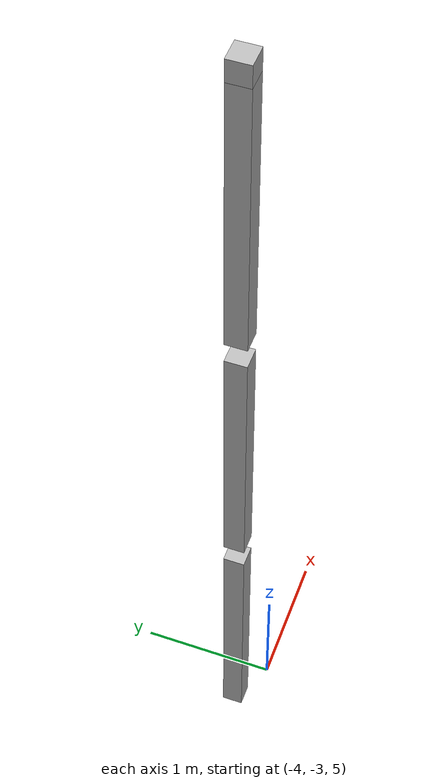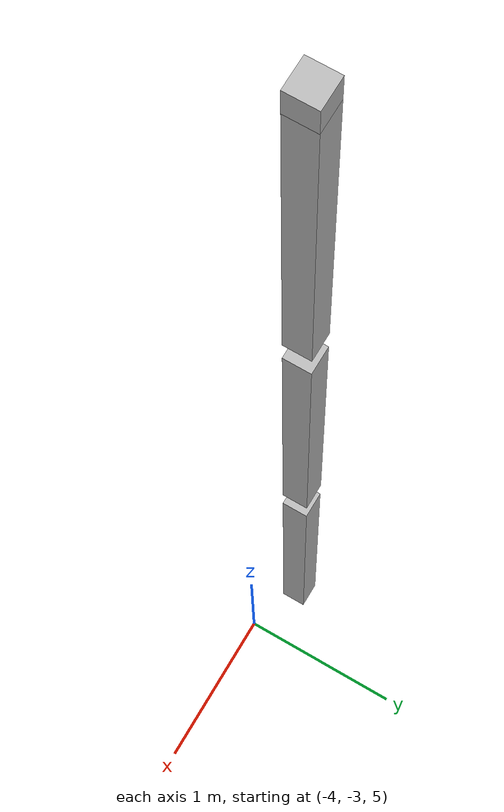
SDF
<sdf version="1.7">
 <world name="default">
  <model name="orthogonal_747_2.000.15_TS">
   <static>1</static>
   <link name="z_link_4_1_1">
    <inertial>
     <mass>1</mass>
     <inertia>
      <ixx>0.166667</ixx>
      <ixy>0</ixy>
      <ixz>0</ixz>
      <iyy>0.166667</iyy>
      <iyz>0</iyz>
      <izz>0.166667</izz>
     </inertia>
    </inertial>
    <pose>2.15 2.15 8.6 0 -0 0</pose>
    <visual name="visual_0">
     <laser_retro>3718</laser_retro>
     <geometry><box><size>0.15 1e-06 2</size></box></geometry>
     <material>
      <script><name>Gazebo/Grey</name><uri>file://media/materials/scripts/gazebo.material</uri></script>
      <shader type="pixel"><normal_map>__default__</normal_map></shader>
      <ambient>0.678 0.498 0.659 1</ambient>
      <diffuse>0.7 0.7 0.7 1</diffuse>
      <specular>0.01 0.01 0.01 1</specular>
      <emissive>0 0 0 1</emissive>
     </material>
     <pose>0 -0.075 0 0 -0 0</pose>
     <transparency>1</transparency>
    </visual>
    <visual name="visual_1">
     <laser_retro>3719</laser_retro>
     <geometry><box><size>0.15 1e-06 2</size></box></geometry>
     <material>
      <script><name>Gazebo/Grey</name><uri>file://media/materials/scripts/gazebo.material</uri></script>
      <shader type="pixel"><normal_map>__default__</normal_map></shader>
      <ambient>0.447 0.624 0.812 1</ambient>
      <diffuse>0.7 0.7 0.7 1</diffuse>
      <specular>0.01 0.01 0.01 1</specular>
      <emissive>0 0 0 1</emissive>
     </material>
     <pose>0 0.075 0 0 -0 0</pose>
     <transparency>1</transparency>
    </visual>
    <visual name="visual_2">
     <laser_retro>3720</laser_retro>
     <geometry><box><size>0.15 0.15 1e-06</size></box></geometry>
     <material>
      <script><name>Gazebo/Grey</name><uri>file://media/materials/scripts/gazebo.material</uri></script>
      <shader type="pixel"><normal_map>__default__</normal_map></shader>
      <ambient>0.988 0.686 0.243 1</ambient>
      <diffuse>0.7 0.7 0.7 1</diffuse>
      <specular>0.01 0.01 0.01 1</specular>
      <emissive>0 0 0 1</emissive>
     </material>
     <pose>0 0 -1 0 -0 0</pose>
     <transparency>1</transparency>
    </visual>
    <visual name="visual_3">
     <laser_retro>3721</laser_retro>
     <geometry><box><size>1e-06 0.15 2</size></box></geometry>
     <material>
      <script><name>Gazebo/Grey</name><uri>file://media/materials/scripts/gazebo.material</uri></script>
      <shader type="pixel"><normal_map>__default__</normal_map></shader>
      <ambient>0.988 0.914 0.31 1</ambient>
      <diffuse>0.7 0.7 0.7 1</diffuse>
      <specular>0.01 0.01 0.01 1</specular>
      <emissive>0 0 0 1</emissive>
     </material>
     <pose>0.075 0 0 0 -0 0</pose>
     <transparency>1</transparency>
    </visual>
    <visual name="visual_4">
     <laser_retro>3722</laser_retro>
     <geometry><box><size>0.15 0.15 1e-06</size></box></geometry>
     <material>
      <script><name>Gazebo/Grey</name><uri>file://media/materials/scripts/gazebo.material</uri></script>
      <shader type="pixel"><normal_map>__default__</normal_map></shader>
      <ambient>0.937 0.161 0.161 1</ambient>
      <diffuse>0.7 0.7 0.7 1</diffuse>
      <specular>0.01 0.01 0.01 1</specular>
      <emissive>0 0 0 1</emissive>
     </material>
     <pose>0 0 1 0 -0 0</pose>
     <transparency>1</transparency>
    </visual>
    <visual name="visual_5">
     <laser_retro>3723</laser_retro>
     <geometry><box><size>1e-06 0.15 2</size></box></geometry>
     <material>
      <script><name>Gazebo/Grey</name><uri>file://media/materials/scripts/gazebo.material</uri></script>
      <shader type="pixel"><normal_map>__default__</normal_map></shader>
      <ambient>0.541 0.886 0.204 1</ambient>
      <diffuse>0.7 0.7 0.7 1</diffuse>
      <specular>0.01 0.01 0.01 1</specular>
      <emissive>0 0 0 1</emissive>
     </material>
     <pose>-0.075 0 0 0 -0 0</pose>
     <transparency>1</transparency>
    </visual>
    <visual name="visual_texture">
     <geometry><box><size>0.149985 0.149985 1.9998</size></box></geometry>
     <material>
      <script>
       <uri>model://BASE_MODELS/simple_block_v2_textured/materials/scripts</uri>
       <uri>model://BASE_MODELS/simple_block_v2_textured/materials/textures</uri>
       <name>metal</name>
      </script>
     </material>
     <laser_retro>3724</laser_retro>
    </visual>
    <collision name="collision">
     <geometry><box><size>0.15 0.15 2</size></box></geometry>
     <surface>
      <friction>
       <ode><mu>1</mu><mu2>1</mu2><fdir1>0 0 0</fdir1><slip1>0</slip1><slip2>0</slip2></ode>
       <torsional>
        <coefficient>1</coefficient>
        <patch_radius>0</patch_radius>
        <surface_radius>0</surface_radius>
        <use_patch_radius>1</use_patch_radius>
        <ode><slip>0</slip></ode>
       </torsional>
      </friction>
      <bounce><restitution_coefficient>0</restitution_coefficient><threshold>1e+06</threshold></bounce>
      <contact>
       <collide_without_contact>0</collide_without_contact>
       <collide_without_contact_bitmask>1</collide_without_contact_bitmask>
       <collide_bitmask>1</collide_bitmask>
       <ode>
        <soft_cfm>0</soft_cfm>
        <soft_erp>0.2</soft_erp>
        <kp>1e+13</kp>
        <kd>1</kd>
        <max_vel>0.01</max_vel>
        <min_depth>0</min_depth>
       </ode>
       <bullet>
        <split_impulse>1</split_impulse>
        <split_impulse_penetration_threshold>-0.01</split_impulse_penetration_threshold>
        <soft_cfm>0</soft_cfm>
        <soft_erp>0.2</soft_erp>
        <kp>1e+13</kp>
        <kd>1</kd>
       </bullet>
      </contact>
     </surface>
    </collision>
   </link>
   <link name="z_link_5_1_1">
    <inertial>
     <mass>1</mass>
     <inertia>
      <ixx>0.166667</ixx>
      <ixy>0</ixy>
      <ixz>0</ixz>
      <iyy>0.166667</iyy>
      <iyz>0</iyz>
      <izz>0.166667</izz>
     </inertia>
    </inertial>
    <pose>2.15 2.15 10.75 0 -0 0</pose>
    <visual name="visual_0">
     <laser_retro>4621</laser_retro>
     <geometry><box><size>0.15 1e-06 2</size></box></geometry>
     <material>
      <script><name>Gazebo/Grey</name><uri>file://media/materials/scripts/gazebo.material</uri></script>
      <shader type="pixel"><normal_map>__default__</normal_map></shader>
      <ambient>0.678 0.498 0.659 1</ambient>
      <diffuse>0.7 0.7 0.7 1</diffuse>
      <specular>0.01 0.01 0.01 1</specular>
      <emissive>0 0 0 1</emissive>
     </material>
     <pose>0 -0.075 0 0 -0 0</pose>
     <transparency>1</transparency>
    </visual>
    <visual name="visual_1">
     <laser_retro>4622</laser_retro>
     <geometry><box><size>0.15 1e-06 2</size></box></geometry>
     <material>
      <script><name>Gazebo/Grey</name><uri>file://media/materials/scripts/gazebo.material</uri></script>
      <shader type="pixel"><normal_map>__default__</normal_map></shader>
      <ambient>0.447 0.624 0.812 1</ambient>
      <diffuse>0.7 0.7 0.7 1</diffuse>
      <specular>0.01 0.01 0.01 1</specular>
      <emissive>0 0 0 1</emissive>
     </material>
     <pose>0 0.075 0 0 -0 0</pose>
     <transparency>1</transparency>
    </visual>
    <visual name="visual_2">
     <laser_retro>4623</laser_retro>
     <geometry><box><size>0.15 0.15 1e-06</size></box></geometry>
     <material>
      <script><name>Gazebo/Grey</name><uri>file://media/materials/scripts/gazebo.material</uri></script>
      <shader type="pixel"><normal_map>__default__</normal_map></shader>
      <ambient>0.988 0.686 0.243 1</ambient>
      <diffuse>0.7 0.7 0.7 1</diffuse>
      <specular>0.01 0.01 0.01 1</specular>
      <emissive>0 0 0 1</emissive>
     </material>
     <pose>0 0 -1 0 -0 0</pose>
     <transparency>1</transparency>
    </visual>
    <visual name="visual_3">
     <laser_retro>4624</laser_retro>
     <geometry><box><size>1e-06 0.15 2</size></box></geometry>
     <material>
      <script><name>Gazebo/Grey</name><uri>file://media/materials/scripts/gazebo.material</uri></script>
      <shader type="pixel"><normal_map>__default__</normal_map></shader>
      <ambient>0.988 0.914 0.31 1</ambient>
      <diffuse>0.7 0.7 0.7 1</diffuse>
      <specular>0.01 0.01 0.01 1</specular>
      <emissive>0 0 0 1</emissive>
     </material>
     <pose>0.075 0 0 0 -0 0</pose>
     <transparency>1</transparency>
    </visual>
    <visual name="visual_4">
     <laser_retro>4625</laser_retro>
     <geometry><box><size>0.15 0.15 1e-06</size></box></geometry>
     <material>
      <script><name>Gazebo/Grey</name><uri>file://media/materials/scripts/gazebo.material</uri></script>
      <shader type="pixel"><normal_map>__default__</normal_map></shader>
      <ambient>0.937 0.161 0.161 1</ambient>
      <diffuse>0.7 0.7 0.7 1</diffuse>
      <specular>0.01 0.01 0.01 1</specular>
      <emissive>0 0 0 1</emissive>
     </material>
     <pose>0 0 1 0 -0 0</pose>
     <transparency>1</transparency>
    </visual>
    <visual name="visual_5">
     <laser_retro>4626</laser_retro>
     <geometry><box><size>1e-06 0.15 2</size></box></geometry>
     <material>
      <script><name>Gazebo/Grey</name><uri>file://media/materials/scripts/gazebo.material</uri></script>
      <shader type="pixel"><normal_map>__default__</normal_map></shader>
      <ambient>0.541 0.886 0.204 1</ambient>
      <diffuse>0.7 0.7 0.7 1</diffuse>
      <specular>0.01 0.01 0.01 1</specular>
      <emissive>0 0 0 1</emissive>
     </material>
     <pose>-0.075 0 0 0 -0 0</pose>
     <transparency>1</transparency>
    </visual>
    <visual name="visual_texture">
     <geometry><box><size>0.149985 0.149985 1.9998</size></box></geometry>
     <material>
      <script>
       <uri>model://BASE_MODELS/simple_block_v2_textured/materials/scripts</uri>
       <uri>model://BASE_MODELS/simple_block_v2_textured/materials/textures</uri>
       <name>metal</name>
      </script>
     </material>
     <laser_retro>4627</laser_retro>
    </visual>
    <collision name="collision">
     <geometry><box><size>0.15 0.15 2</size></box></geometry>
     <surface>
      <friction>
       <ode><mu>1</mu><mu2>1</mu2><fdir1>0 0 0</fdir1><slip1>0</slip1><slip2>0</slip2></ode>
       <torsional>
        <coefficient>1</coefficient>
        <patch_radius>0</patch_radius>
        <surface_radius>0</surface_radius>
        <use_patch_radius>1</use_patch_radius>
        <ode><slip>0</slip></ode>
       </torsional>
      </friction>
      <bounce><restitution_coefficient>0</restitution_coefficient><threshold>1e+06</threshold></bounce>
      <contact>
       <collide_without_contact>0</collide_without_contact>
       <collide_without_contact_bitmask>1</collide_without_contact_bitmask>
       <collide_bitmask>1</collide_bitmask>
       <ode>
        <soft_cfm>0</soft_cfm>
        <soft_erp>0.2</soft_erp>
        <kp>1e+13</kp>
        <kd>1</kd>
        <max_vel>0.01</max_vel>
        <min_depth>0</min_depth>
       </ode>
       <bullet>
        <split_impulse>1</split_impulse>
        <split_impulse_penetration_threshold>-0.01</split_impulse_penetration_threshold>
        <soft_cfm>0</soft_cfm>
        <soft_erp>0.2</soft_erp>
        <kp>1e+13</kp>
        <kd>1</kd>
       </bullet>
      </contact>
     </surface>
    </collision>
   </link>
   <link name="u_link_6_1_1">
    <inertial>
     <mass>1</mass>
     <inertia>
      <ixx>0.166667</ixx>
      <ixy>0</ixy>
      <ixz>0</ixz>
      <iyy>0.166667</iyy>
      <iyz>0</iyz>
      <izz>0.166667</izz>
     </inertia>
    </inertial>
    <pose>2.15 2.15 13.975 0 -0 0</pose>
    <visual name="visual_0">
     <laser_retro>5524</laser_retro>
     <geometry><box><size>0.15 1e-06 0.15</size></box></geometry>
     <material>
      <script><name>Gazebo/Grey</name><uri>file://media/materials/scripts/gazebo.material</uri></script>
      <shader type="pixel"><normal_map>__default__</normal_map></shader>
      <ambient>0.678 0.498 0.659 1</ambient>
      <diffuse>0.7 0.7 0.7 1</diffuse>
      <specular>0.01 0.01 0.01 1</specular>
      <emissive>0 0 0 1</emissive>
     </material>
     <pose>0 -0.075 0 0 -0 0</pose>
     <transparency>1</transparency>
    </visual>
    <visual name="visual_1">
     <laser_retro>5525</laser_retro>
     <geometry><box><size>0.15 1e-06 0.15</size></box></geometry>
     <material>
      <script><name>Gazebo/Grey</name><uri>file://media/materials/scripts/gazebo.material</uri></script>
      <shader type="pixel"><normal_map>__default__</normal_map></shader>
      <ambient>0.447 0.624 0.812 1</ambient>
      <diffuse>0.7 0.7 0.7 1</diffuse>
      <specular>0.01 0.01 0.01 1</specular>
      <emissive>0 0 0 1</emissive>
     </material>
     <pose>0 0.075 0 0 -0 0</pose>
     <transparency>1</transparency>
    </visual>
    <visual name="visual_2">
     <laser_retro>5526</laser_retro>
     <geometry><box><size>0.15 0.15 1e-06</size></box></geometry>
     <material>
      <script><name>Gazebo/Grey</name><uri>file://media/materials/scripts/gazebo.material</uri></script>
      <shader type="pixel"><normal_map>__default__</normal_map></shader>
      <ambient>0.988 0.686 0.243 1</ambient>
      <diffuse>0.7 0.7 0.7 1</diffuse>
      <specular>0.01 0.01 0.01 1</specular>
      <emissive>0 0 0 1</emissive>
     </material>
     <pose>0 0 -0.075 0 -0 0</pose>
     <transparency>1</transparency>
    </visual>
    <visual name="visual_3">
     <laser_retro>5527</laser_retro>
     <geometry><box><size>1e-06 0.15 0.15</size></box></geometry>
     <material>
      <script><name>Gazebo/Grey</name><uri>file://media/materials/scripts/gazebo.material</uri></script>
      <shader type="pixel"><normal_map>__default__</normal_map></shader>
      <ambient>0.988 0.914 0.31 1</ambient>
      <diffuse>0.7 0.7 0.7 1</diffuse>
      <specular>0.01 0.01 0.01 1</specular>
      <emissive>0 0 0 1</emissive>
     </material>
     <pose>0.075 0 0 0 -0 0</pose>
     <transparency>1</transparency>
    </visual>
    <visual name="visual_4">
     <laser_retro>5528</laser_retro>
     <geometry><box><size>0.15 0.15 1e-06</size></box></geometry>
     <material>
      <script><name>Gazebo/Grey</name><uri>file://media/materials/scripts/gazebo.material</uri></script>
      <shader type="pixel"><normal_map>__default__</normal_map></shader>
      <ambient>0.937 0.161 0.161 1</ambient>
      <diffuse>0.7 0.7 0.7 1</diffuse>
      <specular>0.01 0.01 0.01 1</specular>
      <emissive>0 0 0 1</emissive>
     </material>
     <pose>0 0 0.075 0 -0 0</pose>
     <transparency>1</transparency>
    </visual>
    <visual name="visual_5">
     <laser_retro>5529</laser_retro>
     <geometry><box><size>1e-06 0.15 0.15</size></box></geometry>
     <material>
      <script><name>Gazebo/Grey</name><uri>file://media/materials/scripts/gazebo.material</uri></script>
      <shader type="pixel"><normal_map>__default__</normal_map></shader>
      <ambient>0.541 0.886 0.204 1</ambient>
      <diffuse>0.7 0.7 0.7 1</diffuse>
      <specular>0.01 0.01 0.01 1</specular>
      <emissive>0 0 0 1</emissive>
     </material>
     <pose>-0.075 0 0 0 -0 0</pose>
     <transparency>1</transparency>
    </visual>
    <visual name="visual_texture">
     <geometry><box><size>0.149985 0.149985 0.149985</size></box></geometry>
     <material>
      <script>
       <uri>model://BASE_MODELS/simple_block_v2_textured/materials/scripts</uri>
       <uri>model://BASE_MODELS/simple_block_v2_textured/materials/textures</uri>
       <name>metal</name>
      </script>
     </material>
     <laser_retro>5530</laser_retro>
    </visual>
    <collision name="collision">
     <geometry><box><size>0.15 0.15 0.15</size></box></geometry>
     <surface>
      <friction>
       <ode><mu>1</mu><mu2>1</mu2><fdir1>0 0 0</fdir1><slip1>0</slip1><slip2>0</slip2></ode>
       <torsional>
        <coefficient>1</coefficient>
        <patch_radius>0</patch_radius>
        <surface_radius>0</surface_radius>
        <use_patch_radius>1</use_patch_radius>
        <ode><slip>0</slip></ode>
       </torsional>
      </friction>
      <bounce><restitution_coefficient>0</restitution_coefficient><threshold>1e+06</threshold></bounce>
      <contact>
       <collide_without_contact>0</collide_without_contact>
       <collide_without_contact_bitmask>1</collide_without_contact_bitmask>
       <collide_bitmask>1</collide_bitmask>
       <ode>
        <soft_cfm>0</soft_cfm>
        <soft_erp>0.2</soft_erp>
        <kp>1e+13</kp>
        <kd>1</kd>
        <max_vel>0.01</max_vel>
        <min_depth>0</min_depth>
       </ode>
       <bullet>
        <split_impulse>1</split_impulse>
        <split_impulse_penetration_threshold>-0.01</split_impulse_penetration_threshold>
        <soft_cfm>0</soft_cfm>
        <soft_erp>0.2</soft_erp>
        <kp>1e+13</kp>
        <kd>1</kd>
       </bullet>
      </contact>
     </surface>
    </collision>
   </link>
   <link name="z_link_6_1_1">
    <inertial>
     <mass>1</mass>
     <inertia>
      <ixx>0.166667</ixx>
      <ixy>0</ixy>
      <ixz>0</ixz>
      <iyy>0.166667</iyy>
      <iyz>0</iyz>
      <izz>0.166667</izz>
     </inertia>
    </inertial>
    <pose>2.15 2.15 12.9 0 -0 0</pose>
    <visual name="visual_0">
     <laser_retro>5531</laser_retro>
     <geometry><box><size>0.15 1e-06 2</size></box></geometry>
     <material>
      <script><name>Gazebo/Grey</name><uri>file://media/materials/scripts/gazebo.material</uri></script>
      <shader type="pixel"><normal_map>__default__</normal_map></shader>
      <ambient>0.678 0.498 0.659 1</ambient>
      <diffuse>0.7 0.7 0.7 1</diffuse>
      <specular>0.01 0.01 0.01 1</specular>
      <emissive>0 0 0 1</emissive>
     </material>
     <pose>0 -0.075 0 0 -0 0</pose>
     <transparency>1</transparency>
    </visual>
    <visual name="visual_1">
     <laser_retro>5532</laser_retro>
     <geometry><box><size>0.15 1e-06 2</size></box></geometry>
     <material>
      <script><name>Gazebo/Grey</name><uri>file://media/materials/scripts/gazebo.material</uri></script>
      <shader type="pixel"><normal_map>__default__</normal_map></shader>
      <ambient>0.447 0.624 0.812 1</ambient>
      <diffuse>0.7 0.7 0.7 1</diffuse>
      <specular>0.01 0.01 0.01 1</specular>
      <emissive>0 0 0 1</emissive>
     </material>
     <pose>0 0.075 0 0 -0 0</pose>
     <transparency>1</transparency>
    </visual>
    <visual name="visual_2">
     <laser_retro>5533</laser_retro>
     <geometry><box><size>0.15 0.15 1e-06</size></box></geometry>
     <material>
      <script><name>Gazebo/Grey</name><uri>file://media/materials/scripts/gazebo.material</uri></script>
      <shader type="pixel"><normal_map>__default__</normal_map></shader>
      <ambient>0.988 0.686 0.243 1</ambient>
      <diffuse>0.7 0.7 0.7 1</diffuse>
      <specular>0.01 0.01 0.01 1</specular>
      <emissive>0 0 0 1</emissive>
     </material>
     <pose>0 0 -1 0 -0 0</pose>
     <transparency>1</transparency>
    </visual>
    <visual name="visual_3">
     <laser_retro>5534</laser_retro>
     <geometry><box><size>1e-06 0.15 2</size></box></geometry>
     <material>
      <script><name>Gazebo/Grey</name><uri>file://media/materials/scripts/gazebo.material</uri></script>
      <shader type="pixel"><normal_map>__default__</normal_map></shader>
      <ambient>0.988 0.914 0.31 1</ambient>
      <diffuse>0.7 0.7 0.7 1</diffuse>
      <specular>0.01 0.01 0.01 1</specular>
      <emissive>0 0 0 1</emissive>
     </material>
     <pose>0.075 0 0 0 -0 0</pose>
     <transparency>1</transparency>
    </visual>
    <visual name="visual_4">
     <laser_retro>5535</laser_retro>
     <geometry><box><size>0.15 0.15 1e-06</size></box></geometry>
     <material>
      <script><name>Gazebo/Grey</name><uri>file://media/materials/scripts/gazebo.material</uri></script>
      <shader type="pixel"><normal_map>__default__</normal_map></shader>
      <ambient>0.937 0.161 0.161 1</ambient>
      <diffuse>0.7 0.7 0.7 1</diffuse>
      <specular>0.01 0.01 0.01 1</specular>
      <emissive>0 0 0 1</emissive>
     </material>
     <pose>0 0 1 0 -0 0</pose>
     <transparency>1</transparency>
    </visual>
    <visual name="visual_5">
     <laser_retro>5536</laser_retro>
     <geometry><box><size>1e-06 0.15 2</size></box></geometry>
     <material>
      <script><name>Gazebo/Grey</name><uri>file://media/materials/scripts/gazebo.material</uri></script>
      <shader type="pixel"><normal_map>__default__</normal_map></shader>
      <ambient>0.541 0.886 0.204 1</ambient>
      <diffuse>0.7 0.7 0.7 1</diffuse>
      <specular>0.01 0.01 0.01 1</specular>
      <emissive>0 0 0 1</emissive>
     </material>
     <pose>-0.075 0 0 0 -0 0</pose>
     <transparency>1</transparency>
    </visual>
    <visual name="visual_texture">
     <geometry><box><size>0.149985 0.149985 1.9998</size></box></geometry>
     <material>
      <script>
       <uri>model://BASE_MODELS/simple_block_v2_textured/materials/scripts</uri>
       <uri>model://BASE_MODELS/simple_block_v2_textured/materials/textures</uri>
       <name>metal</name>
      </script>
     </material>
     <laser_retro>5537</laser_retro>
    </visual>
    <collision name="collision">
     <geometry><box><size>0.15 0.15 2</size></box></geometry>
     <surface>
      <friction>
       <ode><mu>1</mu><mu2>1</mu2><fdir1>0 0 0</fdir1><slip1>0</slip1><slip2>0</slip2></ode>
       <torsional>
        <coefficient>1</coefficient>
        <patch_radius>0</patch_radius>
        <surface_radius>0</surface_radius>
        <use_patch_radius>1</use_patch_radius>
        <ode><slip>0</slip></ode>
       </torsional>
      </friction>
      <bounce><restitution_coefficient>0</restitution_coefficient><threshold>1e+06</threshold></bounce>
      <contact>
       <collide_without_contact>0</collide_without_contact>
       <collide_without_contact_bitmask>1</collide_without_contact_bitmask>
       <collide_bitmask>1</collide_bitmask>
       <ode>
        <soft_cfm>0</soft_cfm>
        <soft_erp>0.2</soft_erp>
        <kp>1e+13</kp>
        <kd>1</kd>
        <max_vel>0.01</max_vel>
        <min_depth>0</min_depth>
       </ode>
       <bullet>
        <split_impulse>1</split_impulse>
        <split_impulse_penetration_threshold>-0.01</split_impulse_penetration_threshold>
        <soft_cfm>0</soft_cfm>
        <soft_erp>0.2</soft_erp>
        <kp>1e+13</kp>
        <kd>1</kd>
       </bullet>
      </contact>
     </surface>
    </collision>
   </link>
   <pose>-6.47624 -5 -2.5 0 -0 0</pose>
  </model>
 </world>
</sdf>
